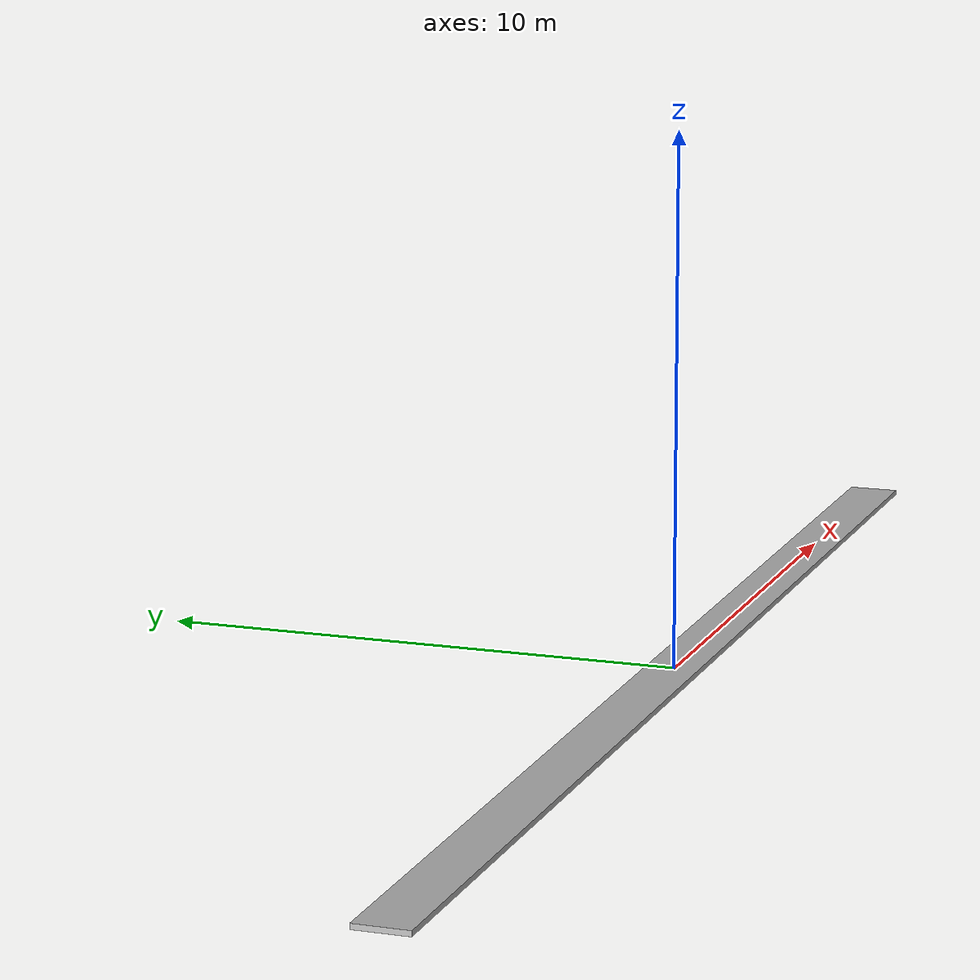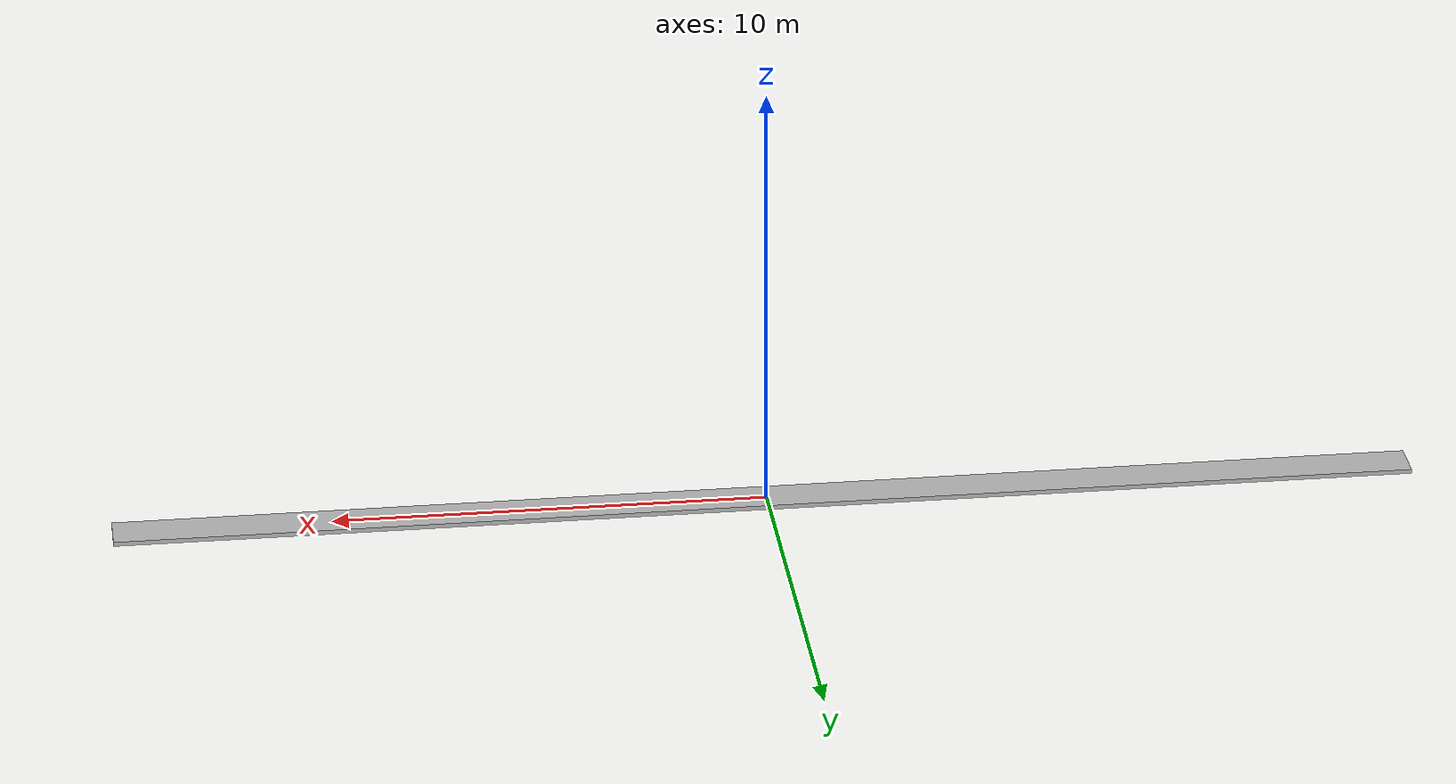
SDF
<?xml version='1.0'?>
<sdf version='1.6'>
  <model name="straight_3000_o_0">
      <static>true</static>
      <link name='link'>
        <collision name='collision'>
          <geometry>
         <box>
            <size>30 1 0.1</size>
          </box>
          </geometry>
          <surface>
            <friction>
              <ode>
                <mu>100</mu>
                <mu2>50</mu2>
              </ode>
            </friction>
          </surface>
        </collision>
        <visual name='visual'>
          <cast_shadows>0</cast_shadows>
          <geometry>
         <box>
            <size>30 1 0.1</size>
          </box>
          </geometry>
          <material>
            <script>
              <uri>model://straight_3000_o_0/materials/scripts</uri>
              <uri>model://straight_3000_o_0/materials/textures/</uri>
              <name>straight_3000_o_0/Image</name>
            </script>
          </material>
        </visual>
      </link>
  </model>
</sdf>
